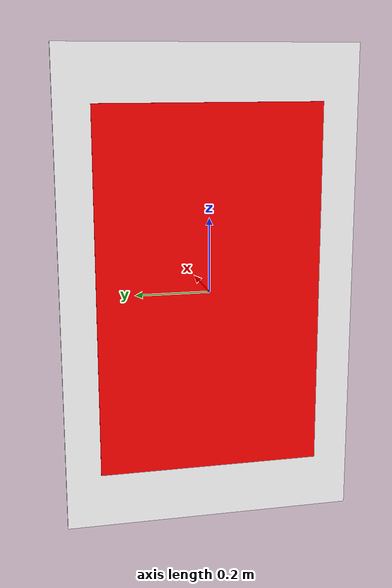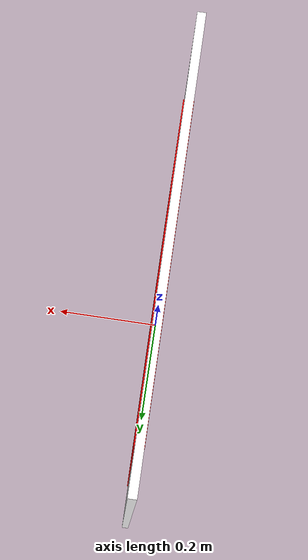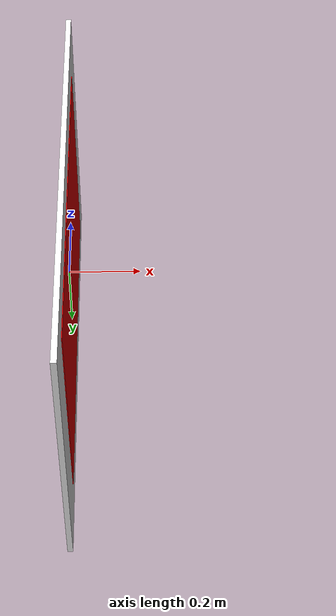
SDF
<?xml version="1.0"?>
<sdf version="1.6">
  <model name="light_panel">
    <static>true</static>
    <link name="base_link">
      <collision name="light_panel_p1">
        <geometry>
          <box>
            <size>0.019 0.6096 1.0</size>
          </box>
        </geometry>
      </collision>
      <visual name="light_panel_p1">
        <geometry>
          <box>
            <size>0.019 0.6096 1.0</size>
          </box>
        </geometry>
        <material>
          <ambient>1 0 0 1</ambient>
          <diffuse>1 0 0 1</diffuse>
          <specular>1 0 0 1</specular>
          <emissive>0 0 0 0.5</emissive>
        </material>
      </visual>
      <collision name="light_panel_p2">
        <geometry>
          <box>
            <size>0.015 0.8 1.3</size>
          </box>
        </geometry>
      </collision>
      <visual name="light_panel_p2">
        <geometry>
          <box>
            <size>0.015 0.8 1.3</size>
          </box>
        </geometry>
        <material>
          <ambient>1 1 1 1</ambient>
          <diffuse>1 1 1 1</diffuse>
          <specular>1 1 1 1</specular>
          <emissive>0 0 0 0.5</emissive>
        </material>
      </visual>

    </link>
  </model>
</sdf>
